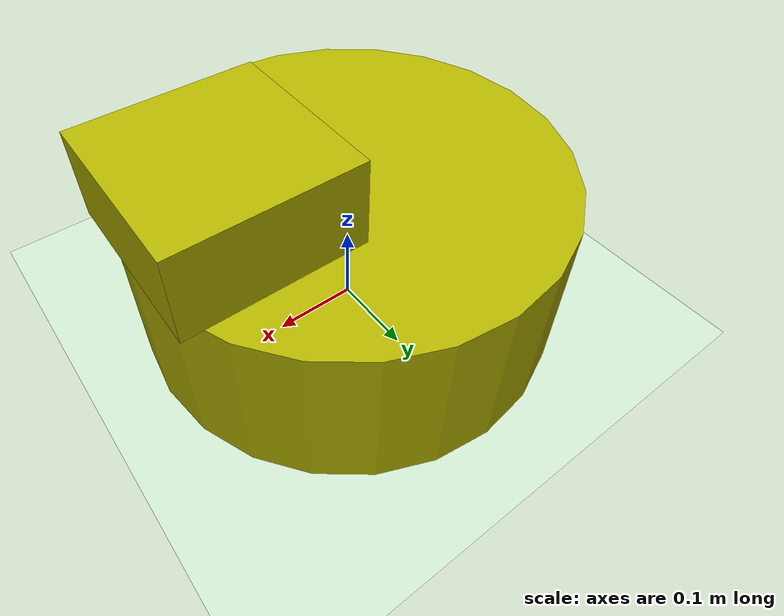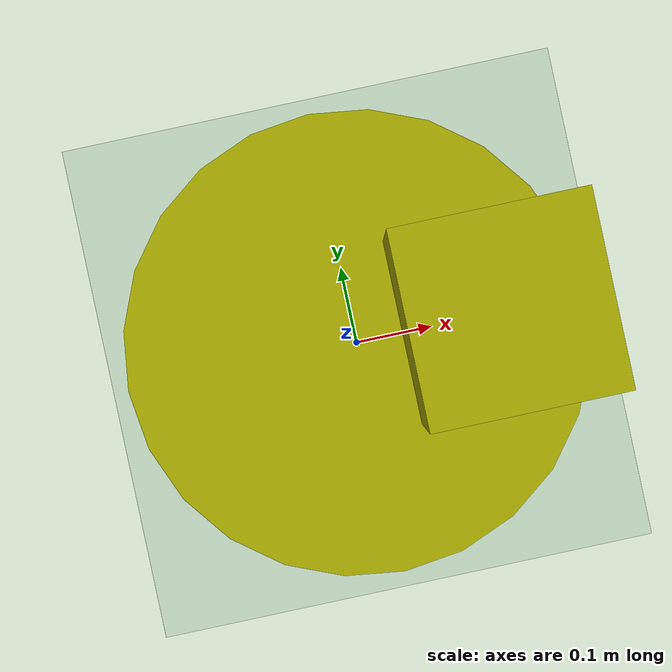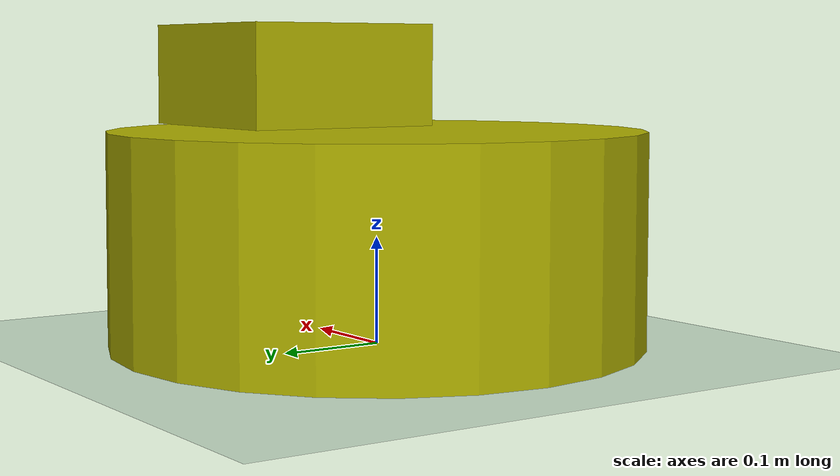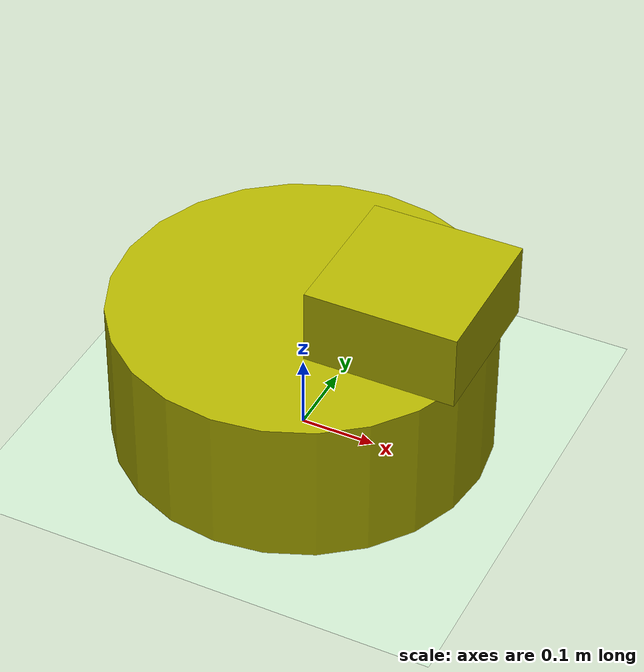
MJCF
<mujoco>
    <compiler angle="radian" inertiafromgeom="true"/>
    <default>
        <joint damping="1"/>
        <geom contype="1" conaffinity="1" friction="1 0.1 0.1" rgba="0.7 0.7 0 1"/>
    </default>
    <asset>
        <texture type="skybox" builtin="gradient" width="100" height="100" rgb1="1 1 1" rgb2="0 0 0"/>
        <texture name="texgeom" type="cube" builtin="flat" mark="cross" width="127" height="1278" rgb1="0.8 0.6 0.4"
                 rgb2="0.8 0.6 0.4" markrgb="1 1 1" random="0.01"/>
        <texture name="texplane" type="2d" builtin="checker" rgb1="0 0 0" rgb2="0.8 0.8 0.8" width="100" height="100"/>
        <material name='MatPlane' texture="texplane" shininess="1" texrepeat="30 30" specular="1" reflectance="0.5"/>
        <material name='geom' texture="texgeom" texuniform="true"/>
    </asset>

    <option gravity="0 0 -9.81" integrator="RK4" timestep="0.01"/>
    <worldbody>
        <light directional="true" cutoff="100" exponent="1" diffuse="1 1 1" specular=".1 .1 .1" pos="0 0 1.3"
               dir="-0 0 -1.3"/>
        <geom name='floor' material="MatPlane" pos='0 0 0' size='40 40 40' type='plane' conaffinity='1'
              rgba='0.8 0.9 0.8 1' condim='3'/>

        <!-- Arm -->
        <body name="torso" pos="0 0 0">
            <joint axis="1 0 0" name="slider1" pos="0 0 0" type="slide"/>
            <joint axis="0 1 0" name="slider2" pos="0 0 0" type="slide"/>
            <joint axis="0 0 1" name="rot" pos="0 0 0" type="hinge"/>
            <geom fromto="0 0 0 0 0 0.2" size="0.25" type="cylinder"/>
            <geom pos=".15 0 0.25" size="0.1 0.1 0.05" type="box"/>
        </body>

    </worldbody>
    <actuator>
        <motor gear="100.0" joint="slider1"/>
        <motor gear="100.0" joint="slider2"/>
        <motor gear="100.0" joint="rot"/>
    </actuator>

</mujoco>
